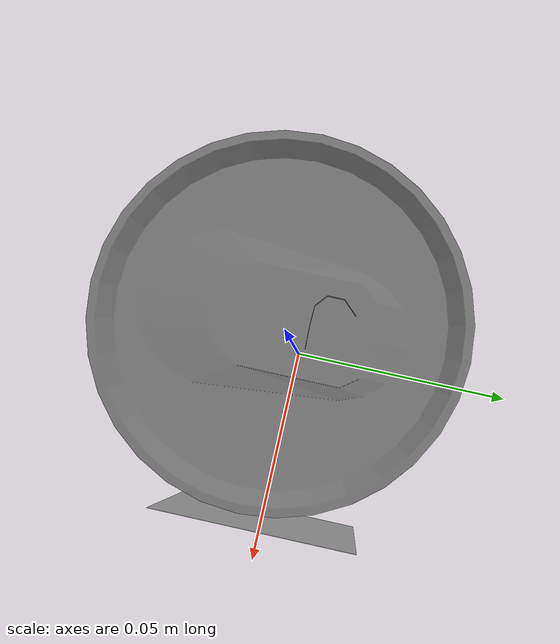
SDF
<?xml version="1.0" ?>
<sdf version="1.4">
    <model name='hsr_coke_with_ar'>
      <link name='link'>
        <pose>0 0 0 0 0 0</pose>
        <inertial>
          <mass>0.35</mass>
          <inertia>
            <ixx>0.001481</ixx>
            <ixy>0</ixy>
            <ixz>0</ixz>
            <iyy>0.001481</iyy>
            <iyz>0</iyz>
            <izz>0.000168</izz>
          </inertia>
        </inertial>
        <visual name='hsr_coke'>
          <pose>0.0 0.0 0.0 0 0 0</pose>
          <geometry>
            <mesh>
              <uri>model://hsr_coke/meshes/hsr_coke.dae</uri>
            </mesh>
          </geometry>
          <material/>
        </visual>
        <collision name='hsr_coke'>
          <pose>0.0 0.0 0.0 0 0 0</pose>
          <geometry>
            <cylinder>
              <radius>0.033</radius>
              <length>0.1235</length>
            </cylinder>
          </geometry>
          <max_contacts>10</max_contacts>
          <surface>
            <bounce>
              <restitution_coefficient>0.2</restitution_coefficient>
              <threshold>0</threshold>
            </bounce>
            <friction>
              <ode/>
            </friction>
            <contact>
              <ode>
                <max_vel>10</max_vel>
              </ode>
            </contact>
          </surface>
        </collision>
        <velocity_decay>
          <linear>0</linear>
          <angular>0</angular>
        </velocity_decay>
        <self_collide>0</self_collide>
        <kinematic>0</kinematic>
        <gravity>1</gravity>
        <visual name='marker_4000'>
          <pose>0.04 0 0.0 0 1.57 3.141</pose>
          <geometry>
            <box>
              <size>0.045 0.045 0.0001</size>
            </box>
          </geometry>

          <material>
            <script>
              <uri>model://marker/4000/scripts</uri>
              <uri>model://marker/4000/textures</uri>
              <name>Marker/4000</name>
            </script>
          </material>
        </visual>
      </link>
      <static>0</static>
    </model>
</sdf>
